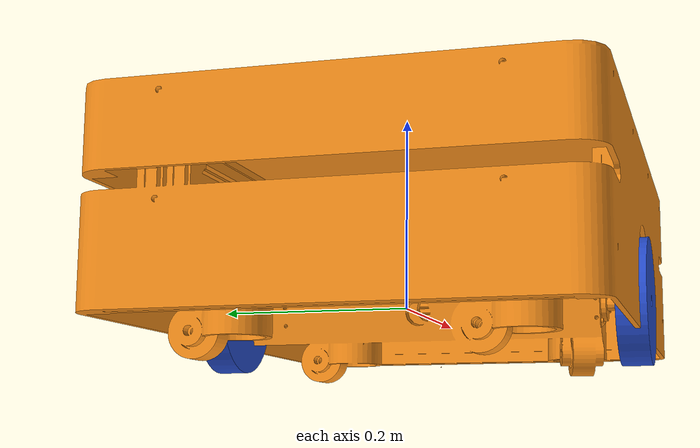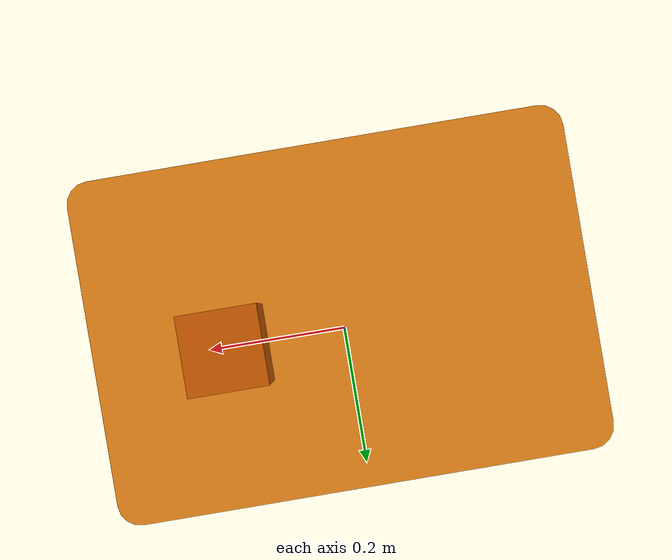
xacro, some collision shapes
<?xml version='1.0'?>

<robot name="myrobot" xmlns:xacro="http://www.ros.org/wiki/xacro">

  <xacro:property name="cameraSize" value="0.05"/>
  <xacro:property name="cameraMass" value="0.1"/>

  <xacro:include filename="$(find mybot_description)/urdf/mybot.gazebo" />
  <xacro:include filename="$(find mybot_description)/urdf/macros.xacro" />

  <link name="base_link">

  </link>

  <joint name="base_joint" type="fixed">
    <axis xyz="0 0 0" />
    <origin xyz="0 0 0" rpy="0 0 0"/>
    <parent link="base_link"/>
    <child link="chassis"/>
  </joint>

  <link name='chassis'>
    <pose>0 0 0.1 0 0 0</pose>

    <inertial>
      <mass value="15.0"/>
      <origin xyz="0.0 0 0.1" rpy=" 0 0 0"/>
      <inertia
          ixx="0.1" ixy="0" ixz="0"
          iyy="0.1" iyz="0"
          izz="0.1"
      />
    </inertial>

    <collision name='collision'>
      <geometry>
        <box size=".4 .2 .1"/>
      </geometry>
    </collision>

   <visual name='chassis_visual'>
      <origin xyz="0.5348 0.21 -0.252" rpy=" 0 0 -1.57"/>
      <geometry>
        <mesh filename="package://mybot_description/meshes/chassis.STL" />
      </geometry>
    </visual>

    <collision name='caster_collision'>
      <origin xyz="-0.15 0 -0.0333" rpy=" 0 0 0"/>
      <geometry>
        <sphere radius="0.0333"/>
      </geometry>
      <surface>
        <friction>
          <ode>
            <mu>0</mu>
            <mu2>0</mu2>
            <slip1>1.0</slip1>
            <slip2>1.0</slip2>
          </ode>
        </friction>
      </surface>
    </collision>

    <visual name='caster_visual'>
      <origin xyz="-0.15 0 -0.05" rpy=" 0 0 0"/>
      <geometry>
        <sphere radius="0.0005"/>
      </geometry>
    </visual>

    <collision name='caster_front_collision'>
      <origin xyz="0.15 0 -0.0333" rpy=" 0 0 0"/>
      <geometry>
        <sphere radius="0.0333"/>
      </geometry>
      <surface>
        <friction>
          <ode>
            <mu>0</mu>
            <mu2>0</mu2>
            <slip1>1.0</slip1>
            <slip2>1.0</slip2>
          </ode>
        </friction>
      </surface>
    </collision>

    <visual name='caster_front_visual'>
      <origin xyz="0.15 0 -0.05" rpy=" 0 0 0"/>
      <geometry>
        <sphere radius="0.0005"/>
      </geometry>
    </visual>

  </link>

  <link name="left_wheel">
    <!--origin xyz="0.1 0.13 0.1" rpy="0 1.5707 1.5707"/-->
    <collision name="collision">
      <origin xyz="0 0 0" rpy="0 1.5707 1.5707"/>
      <geometry>
        <cylinder radius="0.0666" length="0.05"/>
      </geometry>
    </collision>
     <visual name="left_wheel_visual">
      <origin xyz="0 0.027 0" rpy="1.57 0 0"/>
       <geometry>
        <mesh filename="package://mybot_description/meshes/lwheel.STL" />
      </geometry>
    </visual>
    <inertial>
      <origin xyz="0 0 0" rpy="0 1.5707 1.5707"/>
      <mass value="5"/>
      <inertia
        ixx=".1" ixy="0.0" ixz="0.0"
        iyy=".1" iyz="0.0"
        izz=".1"/>
    </inertial>
  </link>

  <link name="right_wheel">
    <!--origin xyz="0.1 -0.13 0.1" rpy="0 1.5707 1.5707"/-->
    <collision name="collision">
      <origin xyz="0 0 0" rpy="0 1.5707 1.5707"/>
      <geometry>
        <cylinder radius="0.0666" length="0.05"/>
      </geometry>
    </collision>
    <visual name="right_wheel_visual">
      <origin xyz="0 -0.1 0" rpy="1.57 0 0"/>
       <geometry>
        <mesh filename="package://mybot_description/meshes/rwheel.STL" />
      </geometry>
    </visual>
    <inertial>
      <origin xyz="0 0 0" rpy="0 1.5707 1.5707"/>
      <mass value="5"/>
      <inertia
        ixx=".1" ixy="0.0" ixz="0.0"
        iyy=".1" iyz="0.0"
        izz=".1"/>
    </inertial>
  </link>

  <joint type="continuous" name="left_wheel_hinge">
    <origin xyz="0 0.15 0" rpy="0 0 0"/>
    <!--origin xyz="0.1 0.13 0" rpy="0 1.5707 1.5707"/-->
    <child link="left_wheel"/>
    <parent link="chassis"/>
    <axis xyz="0 1 0" rpy="0 0 0"/>
    <limit effort="10000" velocity="1000"/>
    <joint_properties damping="1.0" friction="1.0"/>
  </joint>

  <joint type="continuous" name="right_wheel_hinge">
    <origin xyz="0 -0.15 0" rpy="0 0 0"/>
    <!--origin xyz="0.1 -0.13 0" rpy="0 1.5707 1.5707"/-->
    <child link="right_wheel"/>
    <parent link="chassis"/>
    <axis xyz="0 1 0" rpy="0 0 0"/>
    <limit effort="10000" velocity="1000"/>
    <joint_properties damping="1.0" friction="1.0"/>
  </joint>

  <link name="camera">
    <collision>
      <origin xyz="0 0 0" rpy="0 0 0"/>
      <geometry>
        <box size="${cameraSize} ${cameraSize} ${cameraSize}"/>
      </geometry>
    </collision>

    <visual>
      <origin xyz="0 0 0" rpy="0 0 0"/>
      <geometry>
         <box size="0.001 0.001 0.001"/>
      </geometry>
    </visual>

    <inertial>
      <mass value="${cameraMass}" />
      <origin xyz="0 0 0" rpy="0 0 0"/>
      <box_inertia m="${cameraMass}" x="${cameraSize}" y="${cameraSize}" z="${cameraSize}" />
      <inertia ixx="1e-6" ixy="0" ixz="0" iyy="1e-6" iyz="0" izz="1e-6" />
    </inertial>
  </link>

  <joint name="camera_joint" type="fixed">
    <axis xyz="0 1 0" />
    <origin xyz=".2 0 0" rpy="0 0 0"/>
    <parent link="chassis"/>
    <child link="camera"/>
  </joint>

  <!-- rplidar Laser -->
  <link name="rplidar">
    <collision>
      <origin xyz="0 0 0" rpy="0 0 0"/>
      <geometry>
    <box size="0.1 0.1 0.1"/>
      </geometry>
    </collision>

    <visual>
      <origin xyz="0 0 0" rpy="0 0 0"/>
      <geometry>
        <mesh filename="package://mybot_description/meshes/rplidar.dae" />
      </geometry>
    </visual>

    <inertial>
      <mass value="1e-5" />
      <origin xyz="0 0 0" rpy="0 0 0"/>
      <inertia ixx="1e-6" ixy="0" ixz="0" iyy="1e-6" iyz="0" izz="1e-6" />
    </inertial>
  </link>

  <joint name="rplidar_joint" type="fixed">
    <axis xyz="0 1 0" />
    <origin xyz=".15 0 .2" rpy="0 0 0"/>
    <parent link="chassis"/>
    <child link="rplidar"/>
  </joint>

</robot>
